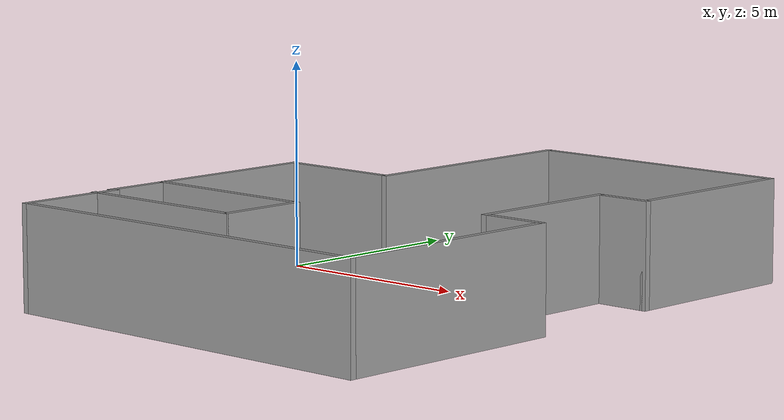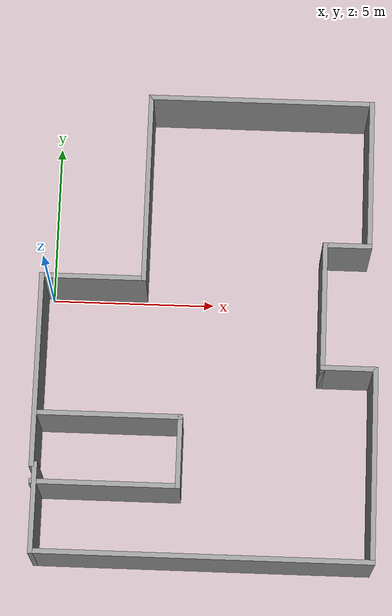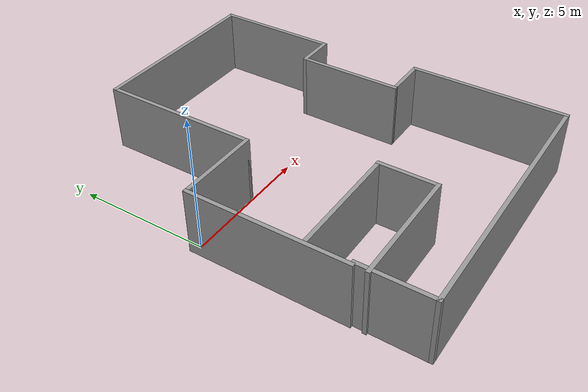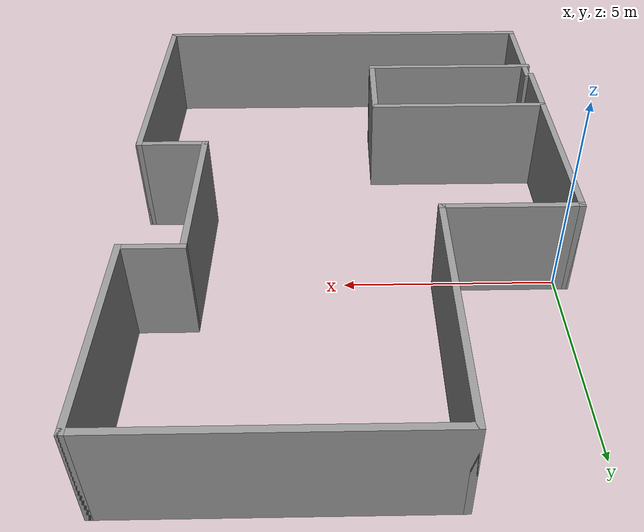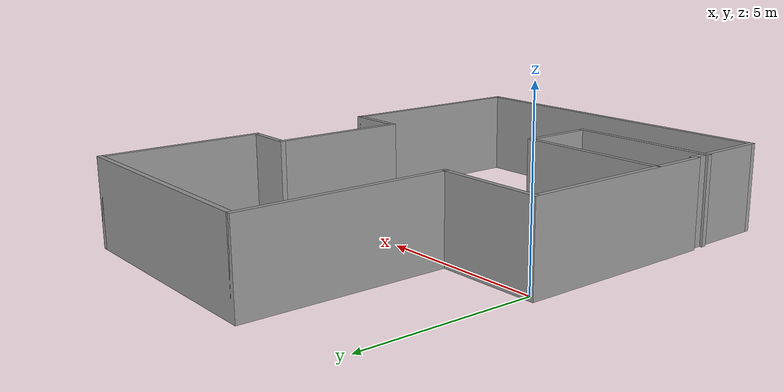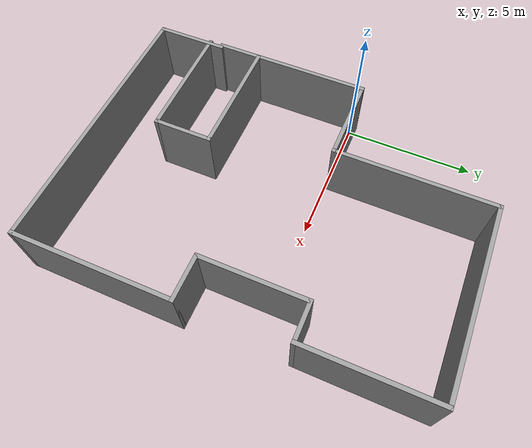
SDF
<?xml version='1.0'?>
<sdf version='1.6'>
  <model name='irc_world'>
    <pose frame=''>4.86 -1.16 0 0 -0 0</pose>
    <link name='Wall_1'>
      <collision name='Wall_1_Collision'>
        <geometry>
          <box>
            <size>6 0.15 2.5</size>
          </box>
        </geometry>
        <pose frame=''>0 0 1.25 0 -0 0</pose>
      </collision>
      <visual name='Wall_1_Visual'>
        <pose frame=''>0 0 1.25 0 -0 0</pose>
        <geometry>
          <box>
            <size>6 0.15 2.5</size>
          </box>
        </geometry>
        <material>
          <script>
            <uri>file://media/materials/scripts/gazebo.material</uri>
            <name>Gazebo/Grey</name>
          </script>
          <ambient>0 0 0 1</ambient>
        </material>
        <meta>
          <layer>0</layer>
        </meta>
      </visual>
      <pose frame=''>-5.1 -1.625 0 0 -0 1.5708</pose>
    </link>
    <link name='Wall_10'>
      <collision name='Wall_10_Collision'>
        <geometry>
          <box>
            <size>10.25 0.15 2.5</size>
          </box>
        </geometry>
        <pose frame=''>0 0 1.25 0 -0 0</pose>
      </collision>
      <visual name='Wall_10_Visual'>
        <pose frame=''>0 0 1.25 0 -0 0</pose>
        <geometry>
          <box>
            <size>10.25 0.15 2.5</size>
          </box>
        </geometry>
        <material>
          <script>
            <uri>file://media/materials/scripts/gazebo.material</uri>
            <name>Gazebo/Grey</name>
          </script>
          <ambient>0 0 0 1</ambient>
        </material>
        <meta>
          <layer>0</layer>
        </meta>
      </visual>
      <pose frame=''>0.05 -7.15 0 0 -0 3.14159</pose>
    </link>
    <link name='Wall_11'>
      <collision name='Wall_11_Collision'>
        <geometry>
          <box>
            <size>2.75 0.15 2.5</size>
          </box>
        </geometry>
        <pose frame=''>0 0 1.25 0 -0 0</pose>
      </collision>
      <visual name='Wall_11_Visual'>
        <pose frame=''>0 0 1.25 0 -0 0</pose>
        <geometry>
          <box>
            <size>2.75 0.15 2.5</size>
          </box>
        </geometry>
        <material>
          <script>
            <uri>file://media/materials/scripts/gazebo.material</uri>
            <name>Gazebo/Grey</name>
          </script>
          <ambient>0 0 0 1</ambient>
        </material>
        <meta>
          <layer>0</layer>
        </meta>
      </visual>
      <pose frame=''>-5 -5.85 0 0 -0 1.5708</pose>
    </link>
    <link name='Wall_14'>
      <collision name='Wall_14_Collision'>
        <geometry>
          <box>
            <size>4.5 0.15 2.5</size>
          </box>
        </geometry>
        <pose frame=''>0 0 1.25 0 -0 0</pose>
      </collision>
      <visual name='Wall_14_Visual'>
        <pose frame=''>0 0 1.25 0 -0 0</pose>
        <geometry>
          <box>
            <size>4.5 0.15 2.5</size>
          </box>
        </geometry>
        <material>
          <script>
            <uri>file://media/materials/scripts/gazebo.material</uri>
            <name>Gazebo/Grey</name>
          </script>
          <ambient>0 0 0 1</ambient>
        </material>
        <meta>
          <layer>0</layer>
        </meta>
      </visual>
      <pose frame=''>-2.90003 -2.9669 0 0 -0 0</pose>
    </link>
    <link name='Wall_15'>
      <collision name='Wall_15_Collision'>
        <geometry>
          <box>
            <size>2.25 0.15 2.5</size>
          </box>
        </geometry>
        <pose frame=''>0 0 1.25 0 -0 0</pose>
      </collision>
      <visual name='Wall_15_Visual'>
        <pose frame=''>0 0 1.25 0 -0 0</pose>
        <geometry>
          <box>
            <size>2.25 0.15 2.5</size>
          </box>
        </geometry>
        <material>
          <script>
            <uri>file://media/materials/scripts/gazebo.material</uri>
            <name>Gazebo/Grey</name>
          </script>
          <ambient>0 0 0 1</ambient>
        </material>
        <meta>
          <layer>0</layer>
        </meta>
      </visual>
      <pose frame=''>-0.725027 -4.0169 0 0 0 -1.5708</pose>
    </link>
    <link name='Wall_16'>
      <collision name='Wall_16_Collision'>
        <geometry>
          <box>
            <size>4.5 0.15 2.5</size>
          </box>
        </geometry>
        <pose frame=''>0 0 1.25 0 -0 0</pose>
      </collision>
      <visual name='Wall_16_Visual'>
        <pose frame=''>0 0 1.25 0 -0 0</pose>
        <geometry>
          <box>
            <size>4.5 0.15 2.5</size>
          </box>
        </geometry>
        <material>
          <script>
            <uri>file://media/materials/scripts/gazebo.material</uri>
            <name>Gazebo/Grey</name>
          </script>
          <ambient>0 0 0 1</ambient>
        </material>
        <meta>
          <layer>0</layer>
        </meta>
      </visual>
      <pose frame=''>-2.90003 -5.0669 0 0 -0 3.14159</pose>
    </link>
    <link name='Wall_2'>
      <collision name='Wall_2_Collision'>
        <geometry>
          <box>
            <size>3.25 0.15 2.5</size>
          </box>
        </geometry>
        <pose frame=''>0 0 1.25 0 -0 0</pose>
      </collision>
      <visual name='Wall_2_Visual'>
        <pose frame=''>0 0 1.25 0 -0 0</pose>
        <geometry>
          <box>
            <size>3.25 0.15 2.5</size>
          </box>
        </geometry>
        <material>
          <script>
            <uri>file://media/materials/scripts/gazebo.material</uri>
            <name>Gazebo/Grey</name>
          </script>
          <ambient>0 0 0 1</ambient>
        </material>
        <meta>
          <layer>0</layer>
        </meta>
      </visual>
      <pose frame=''>-3.55 1.3 0 0 -0 0</pose>
    </link>
    <link name='Wall_3'>
      <collision name='Wall_3_Collision'>
        <geometry>
          <box>
            <size>6 0.15 2.5</size>
          </box>
        </geometry>
        <pose frame=''>0 0 1.25 0 -0 0</pose>
      </collision>
      <visual name='Wall_3_Visual'>
        <pose frame=''>0 0 1.25 0 -0 0</pose>
        <geometry>
          <box>
            <size>6 0.15 2.5</size>
          </box>
        </geometry>
        <material>
          <script>
            <uri>file://media/materials/scripts/gazebo.material</uri>
            <name>Gazebo/Grey</name>
          </script>
          <ambient>0 0 0 1</ambient>
        </material>
        <meta>
          <layer>0</layer>
        </meta>
      </visual>
      <pose frame=''>-2 4.225 0 0 -0 1.5708</pose>
    </link>
    <link name='Wall_4'>
      <collision name='Wall_4_Collision'>
        <geometry>
          <box>
            <size>7 0.15 2.5</size>
          </box>
        </geometry>
        <pose frame=''>0 0 1.25 0 -0 0</pose>
      </collision>
      <visual name='Wall_4_Visual'>
        <pose frame=''>0 0 1.25 0 -0 0</pose>
        <geometry>
          <box>
            <size>7 0.15 2.5</size>
          </box>
        </geometry>
        <material>
          <script>
            <uri>file://media/materials/scripts/gazebo.material</uri>
            <name>Gazebo/Grey</name>
          </script>
          <ambient>0 0 0 1</ambient>
        </material>
        <meta>
          <layer>0</layer>
        </meta>
      </visual>
      <pose frame=''>1.425 7.15 0 0 -0 0</pose>
    </link>
    <link name='Wall_5'>
      <collision name='Wall_5_Collision'>
        <geometry>
          <box>
            <size>4.75 0.15 2.5</size>
          </box>
        </geometry>
        <pose frame=''>0 0 1.25 0 -0 0</pose>
      </collision>
      <visual name='Wall_5_Visual'>
        <pose frame=''>0 0 1.25 0 -0 0</pose>
        <geometry>
          <box>
            <size>4.75 0.15 2.5</size>
          </box>
        </geometry>
        <material>
          <script>
            <uri>file://media/materials/scripts/gazebo.material</uri>
            <name>Gazebo/Grey</name>
          </script>
          <ambient>0 0 0 1</ambient>
        </material>
        <meta>
          <layer>0</layer>
        </meta>
      </visual>
      <pose frame=''>4.85 4.85 0 0 0 -1.5708</pose>
    </link>
    <link name='Wall_6'>
      <collision name='Wall_6_Collision'>
        <geometry>
          <box>
            <size>1.5 0.15 2.5</size>
          </box>
        </geometry>
        <pose frame=''>0 0 1.25 0 -0 0</pose>
      </collision>
      <visual name='Wall_6_Visual'>
        <pose frame=''>0 0 1.25 0 -0 0</pose>
        <geometry>
          <box>
            <size>1.5 0.15 2.5</size>
          </box>
        </geometry>
        <material>
          <script>
            <uri>file://media/materials/scripts/gazebo.material</uri>
            <name>Gazebo/Grey</name>
          </script>
          <ambient>1 1 1 1</ambient>
        </material>
        <meta>
          <layer>0</layer>
        </meta>
      </visual>
      <pose frame=''>4.175 2.55 0 0 -0 3.14159</pose>
    </link>
    <link name='Wall_7'>
      <collision name='Wall_7_Collision'>
        <geometry>
          <box>
            <size>4 0.15 2.5</size>
          </box>
        </geometry>
        <pose frame=''>0 0 1.25 0 -0 0</pose>
      </collision>
      <visual name='Wall_7_Visual'>
        <pose frame=''>0 0 1.25 0 -0 0</pose>
        <geometry>
          <box>
            <size>4 0.15 2.5</size>
          </box>
        </geometry>
        <material>
          <script>
            <uri>file://media/materials/scripts/gazebo.material</uri>
            <name>Gazebo/Grey</name>
          </script>
          <ambient>0 0 0 1</ambient>
        </material>
        <meta>
          <layer>0</layer>
        </meta>
      </visual>
      <pose frame=''>3.5 0.625 0 0 0 -1.5708</pose>
    </link>
    <link name='Wall_8'>
      <collision name='Wall_8_Collision'>
        <geometry>
          <box>
            <size>1.75 0.15 2.5</size>
          </box>
        </geometry>
        <pose frame=''>0 0 1.25 0 -0 0</pose>
      </collision>
      <visual name='Wall_8_Visual'>
        <pose frame=''>0 0 1.25 0 -0 0</pose>
        <geometry>
          <box>
            <size>1.75 0.15 2.5</size>
          </box>
        </geometry>
        <material>
          <script>
            <uri>file://media/materials/scripts/gazebo.material</uri>
            <name>Gazebo/Grey</name>
          </script>
          <ambient>0 0 0 1</ambient>
        </material>
        <meta>
          <layer>0</layer>
        </meta>
      </visual>
      <pose frame=''>4.3 -1.3 0 0 -0 0</pose>
    </link>
    <link name='Wall_9'>
      <collision name='Wall_9_Collision'>
        <geometry>
          <box>
            <size>6 0.15 2.5</size>
          </box>
        </geometry>
        <pose frame=''>0 0 1.25 0 -0 0</pose>
      </collision>
      <visual name='Wall_9_Visual'>
        <pose frame=''>0 0 1.25 0 -0 0</pose>
        <geometry>
          <box>
            <size>6 0.15 2.5</size>
          </box>
        </geometry>
        <material>
          <script>
            <uri>file://media/materials/scripts/gazebo.material</uri>
            <name>Gazebo/Grey</name>
          </script>
          <ambient>1 1 1 1</ambient>
        </material>
        <meta>
          <layer>0</layer>
        </meta>
      </visual>
      <pose frame=''>5.1 -4.225 0 0 0 -1.5708</pose>
    </link>
    <static>1</static>
  </model>
</sdf>
